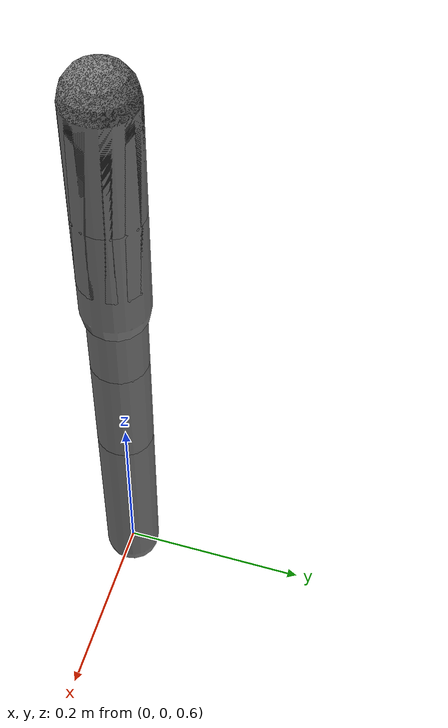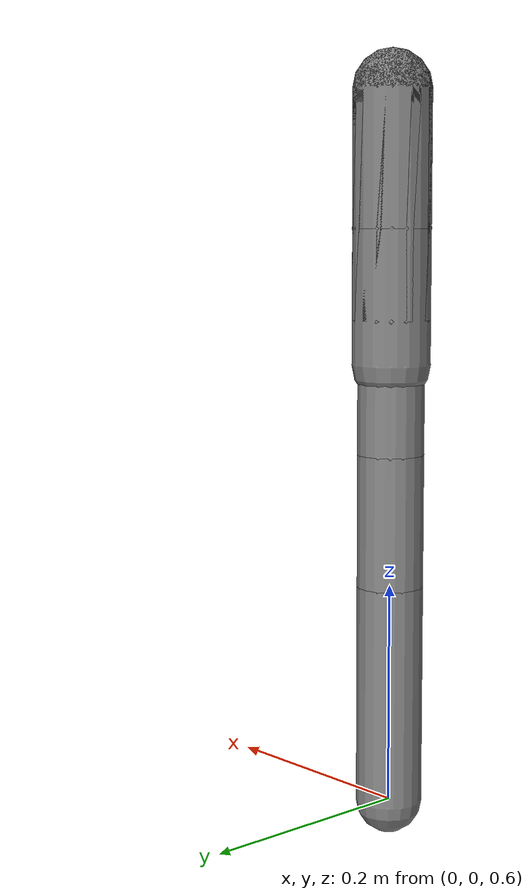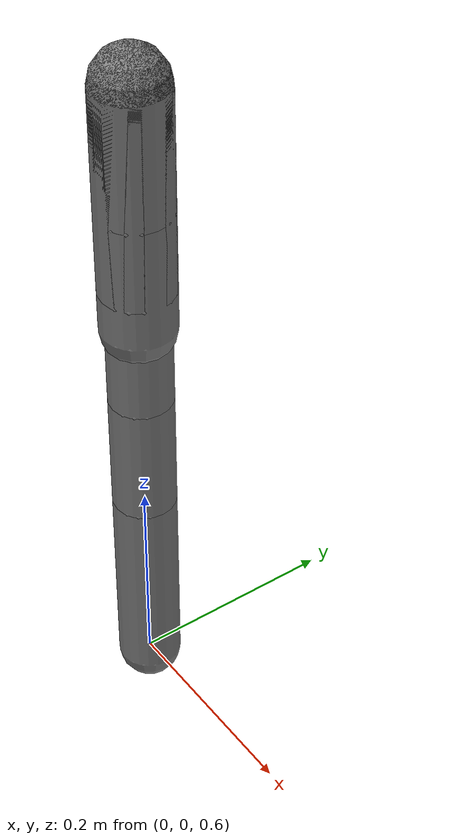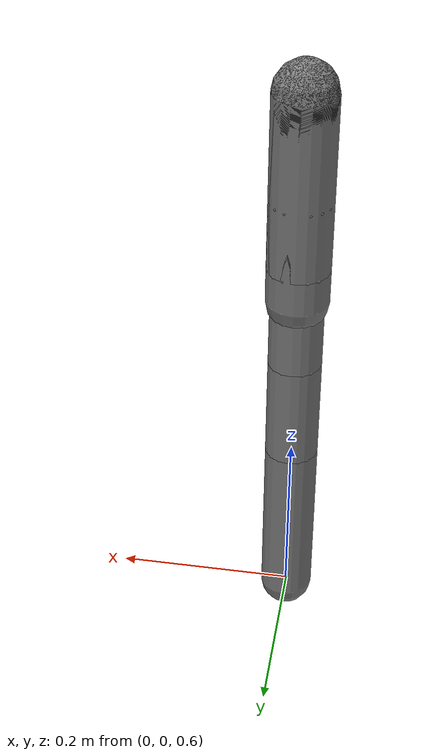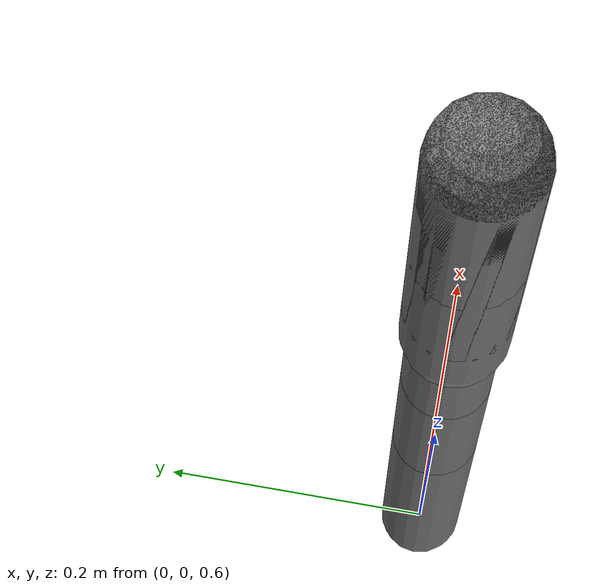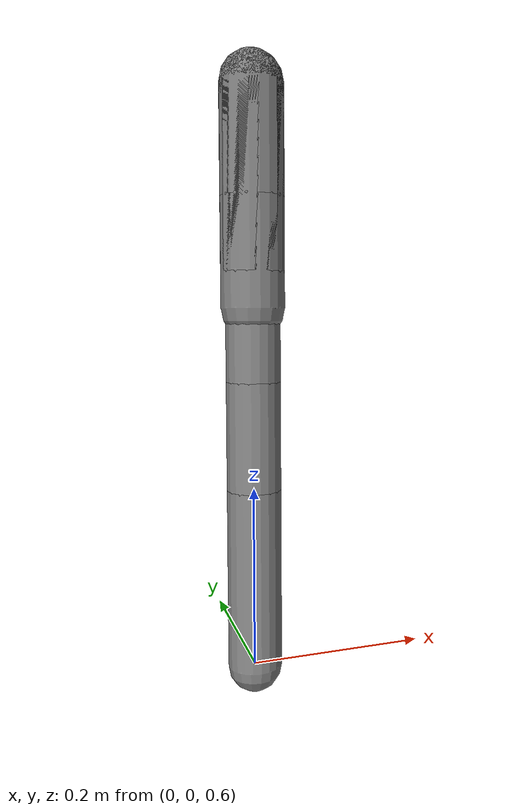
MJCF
<mujoco model="ohmc_bvh_channel_demo">
  <compiler angle="radian"/>
  <option timestep="0.002" gravity="0 0 0"/>
  <worldbody>
    <body name="hips_z_body" pos="0 0 1">
      <joint name="Hips.z_rotation" type="hinge" axis="0 0 1" range="-3.141592653589793 3.141592653589793"/>
      <geom type="capsule" fromto="0 0 0 0 0 0.12" size="0.035" mass="0.1"/>
      <body name="hips_x_body" pos="0 0 0.12">
        <joint name="Hips.x_rotation" type="hinge" axis="1 0 0" range="-3.141592653589793 3.141592653589793"/>
        <geom type="capsule" fromto="0 0 0 0 0 0.12" size="0.035" mass="0.1"/>
        <body name="hips_y_body" pos="0 0 0.12">
          <joint name="Hips.y_rotation" type="hinge" axis="0 1 0" range="-3.141592653589793 3.141592653589793"/>
          <geom type="capsule" fromto="0 0 0 0 0 -0.2" size="0.035" mass="0.1"/>
          <body name="knee_z_body" pos="0 0 -0.2">
            <joint name="LeftKnee.z_rotation" type="hinge" axis="0 0 1" range="-3.141592653589793 3.141592653589793"/>
            <geom type="capsule" fromto="0 0 0 0 0 -0.12" size="0.03" mass="0.1"/>
            <body name="knee_x_body" pos="0 0 -0.12">
              <joint name="LeftKnee.x_rotation" type="hinge" axis="1 0 0" range="-3.141592653589793 3.141592653589793"/>
              <geom type="capsule" fromto="0 0 0 0 0 -0.12" size="0.03" mass="0.1"/>
              <body name="knee_y_body" pos="0 0 -0.12">
                <joint name="LeftKnee.y_rotation" type="hinge" axis="0 1 0" range="-3.141592653589793 3.141592653589793"/>
                <geom type="capsule" fromto="0 0 0 0 0 -0.2" size="0.03" mass="0.1"/>
              </body>
            </body>
          </body>
        </body>
      </body>
    </body>
  </worldbody>
</mujoco>
